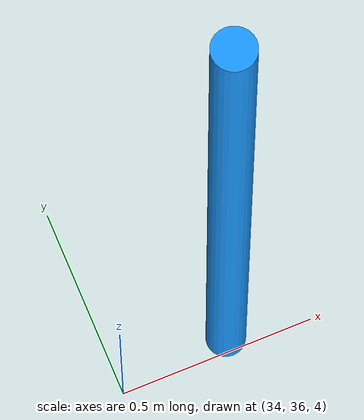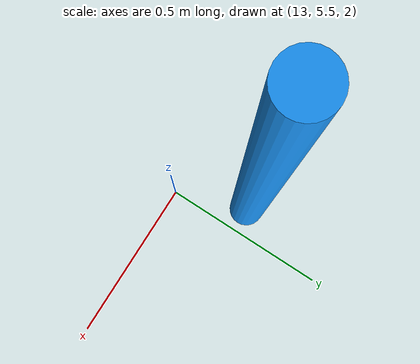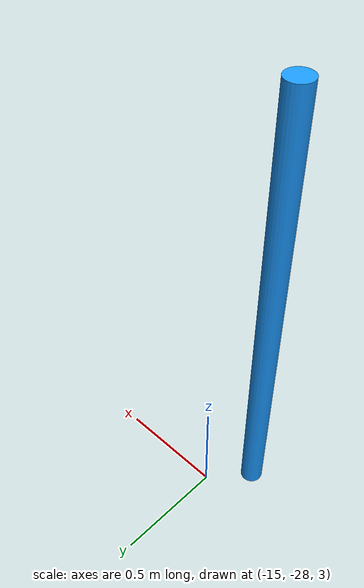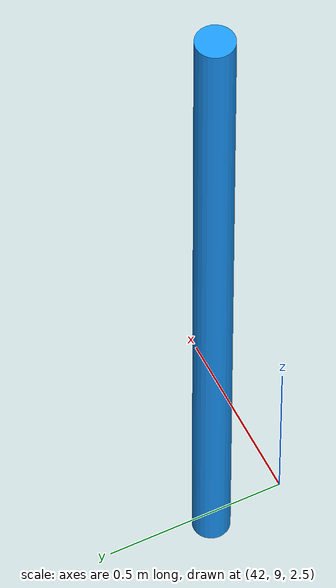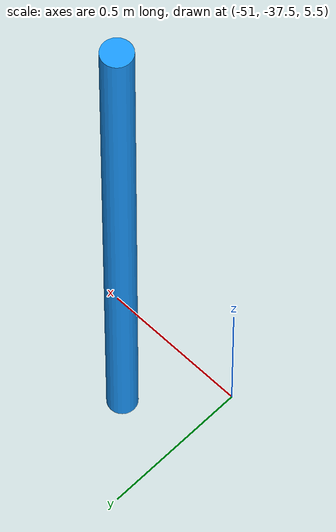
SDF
<sdf version="1.9">
 <world name="jezero_seitah_rocks_k05_full">
  <physics name="1ms" type="ignored">
   <max_step_size>0.001</max_step_size>
   <real_time_factor>1</real_time_factor>
  </physics>
  <gravity>0 0 -3.721</gravity>
  <plugin filename="gz-sim-physics-system" name="gz::sim::systems::Physics"/>
  <plugin filename="gz-sim-user-commands-system" name="gz::sim::systems::UserCommands"/>
  <plugin filename="gz-sim-scene-broadcaster-system" name="gz::sim::systems::SceneBroadcaster"/>
  <scene><ambient>0.5 0.4 0.35 1</ambient><background>0.85 0.65 0.50 1</background><grid>false</grid></scene>
  <light type="directional" name="sun">
   <pose>0 0 100 0 0 0</pose>
   <diffuse>0.9 0.85 0.8 1</diffuse>
   <direction>-0.5 0.3 -0.8</direction>
  </light>
  <model name="waypoint_sol200">
   <static>true</static>
   <pose>-50.72 -37.3 6.38 0 0 0</pose>
   <link name="link">
    <visual name="v">
     <geometry><cylinder><radius>0.05</radius><length>2.0</length></cylinder></geometry>
     <material><ambient>0.1 0.6 1 1</ambient><diffuse>0.1 0.6 1 1</diffuse></material>
    </visual>
   </link>
  </model>
  <model name="waypoint_sol201">
   <static>true</static>
   <pose>-15.14 -28.17 4.01 0 0 0</pose>
   <link name="link">
    <visual name="v">
     <geometry><cylinder><radius>0.05</radius><length>2.0</length></cylinder></geometry>
     <material><ambient>0.1 0.6 1 1</ambient><diffuse>0.1 0.6 1 1</diffuse></material>
    </visual>
   </link>
  </model>
  <model name="waypoint_sol202">
   <static>true</static>
   <pose>12.93 5.71 3.07 0 0 0</pose>
   <link name="link">
    <visual name="v">
     <geometry><cylinder><radius>0.05</radius><length>2.0</length></cylinder></geometry>
     <material><ambient>0.1 0.6 1 1</ambient><diffuse>0.1 0.6 1 1</diffuse></material>
    </visual>
   </link>
  </model>
  <model name="waypoint_sol203">
   <static>true</static>
   <pose>41.83 9.29 3.74 0 0 0</pose>
   <link name="link">
    <visual name="v">
     <geometry><cylinder><radius>0.05</radius><length>2.0</length></cylinder></geometry>
     <material><ambient>0.1 0.6 1 1</ambient><diffuse>0.1 0.6 1 1</diffuse></material>
    </visual>
   </link>
  </model>
  <model name="waypoint_sol210">
   <static>true</static>
   <pose>34.29 36.04 4.99 0 0 0</pose>
   <link name="link">
    <visual name="v">
     <geometry><cylinder><radius>0.05</radius><length>2.0</length></cylinder></geometry>
     <material><ambient>0.1 0.6 1 1</ambient><diffuse>0.1 0.6 1 1</diffuse></material>
    </visual>
   </link>
  </model>
 </world>
</sdf>
